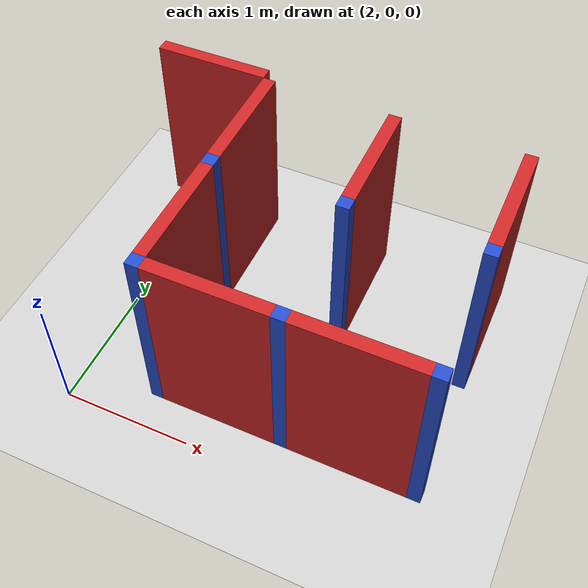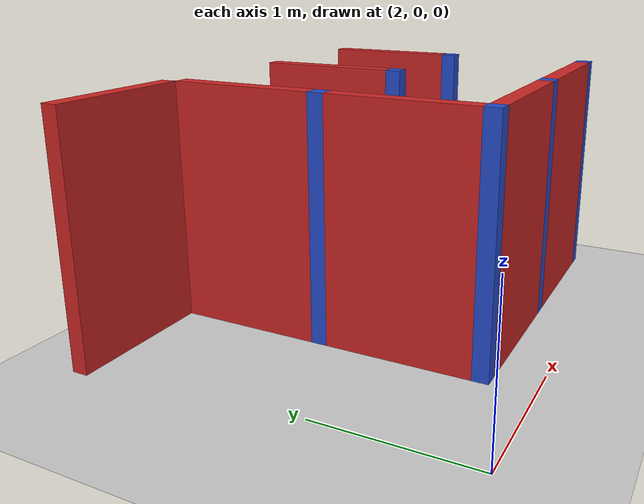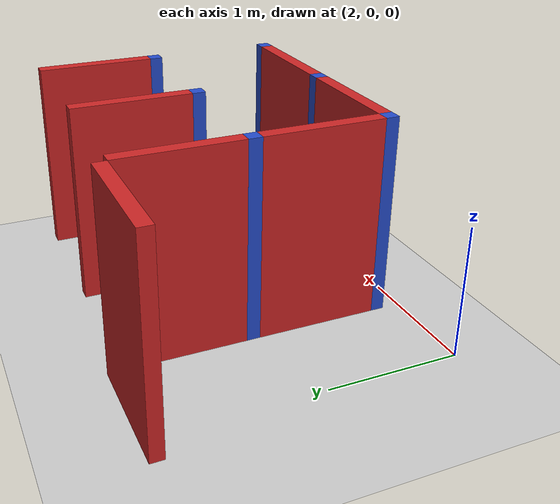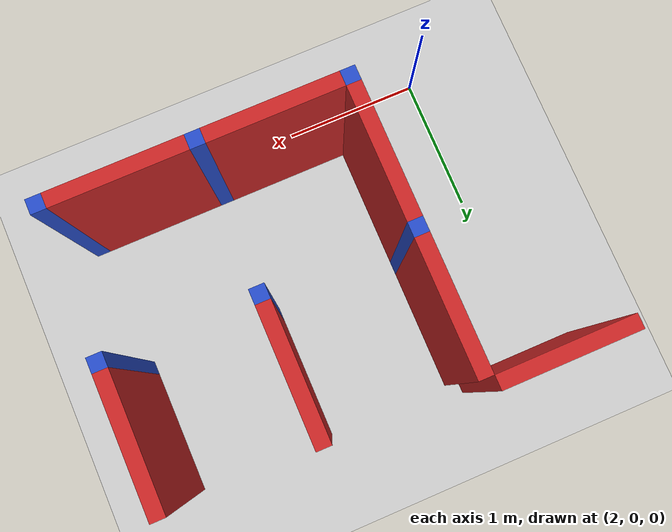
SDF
<sdf version="1.7">
 <world name="default">
  <model name="ground_plane">
   <static>1</static>
   <link name="link">
    <collision name="collision">
     <geometry><plane><normal>0 0 1</normal><size>100 100</size></plane></geometry>
     <surface><friction><ode><mu>100</mu><mu2>50</mu2></ode></friction></surface>
    </collision>
    <visual name="visual">
     <cast_shadows>0</cast_shadows>
     <geometry><plane><normal>0 0 1</normal><size>100 100</size></plane></geometry>
     <material>
      <script><uri>file://media/materials/scripts/gazebo.material</uri><name>Gazebo/Grey</name></script>
     </material>
    </visual>
   </link>
  </model>
  <model name="maze_demo">
   <link name="Joint_10_-14">
    <pose>10 -14 0 0 -0 0</pose>
    <visual name="Wall_2_Visual">
     <pose>0 0 0.75 0 -0 0</pose>
     <geometry><box><size>0.1 0.1 1.5</size></box></geometry>
     <material>
      <script><uri>file://media/materials/scripts/gazebo.material</uri><name>Gazebo/Blue</name></script>
      <ambient>0.996078 0.47451 0.0196078 1</ambient>
      <shader type="pixel"/>
     </material>
     <meta><layer>0</layer></meta>
    </visual>
    <collision name="Wall_2_Collision">
     <pose>0 0 0.75 0 -0 0</pose>
     <geometry><box><size>0.1 0.1 1.5</size></box></geometry>
     <surface>
      <friction>
       <ode><mu>1</mu><mu2>1</mu2><fdir1>0 0 0</fdir1><slip1>0</slip1><slip2>0</slip2></ode>
       <torsional>
        <coefficient>1</coefficient>
        <patch_radius>0</patch_radius>
        <surface_radius>0</surface_radius>
        <use_patch_radius>1</use_patch_radius>
        <ode><slip>0</slip></ode>
       </torsional>
      </friction>
      <bounce><restitution_coefficient>0</restitution_coefficient><threshold>1e+06</threshold></bounce>
      <contact>
       <collide_without_contact>0</collide_without_contact>
       <collide_without_contact_bitmask>1</collide_without_contact_bitmask>
       <collide_bitmask>1</collide_bitmask>
       <ode>
        <soft_cfm>0</soft_cfm>
        <soft_erp>0.2</soft_erp>
        <kp>1e+13</kp>
        <kd>1</kd>
        <max_vel>0.01</max_vel>
        <min_depth>0</min_depth>
       </ode>
       <bullet>
        <split_impulse>1</split_impulse>
        <split_impulse_penetration_threshold>-0.01</split_impulse_penetration_threshold>
        <soft_cfm>0</soft_cfm>
        <soft_erp>0.2</soft_erp>
        <kp>1e+13</kp>
        <kd>1</kd>
       </bullet>
      </contact>
     </surface>
    </collision>
   </link>
   <link name="Joint_10_-15">
    <pose>10 -15 0 0 -0 0</pose>
    <visual name="Wall_2_Visual">
     <pose>0 0 0.75 0 -0 0</pose>
     <geometry><box><size>0.1 0.1 1.5</size></box></geometry>
     <material>
      <script><uri>file://media/materials/scripts/gazebo.material</uri><name>Gazebo/Blue</name></script>
      <ambient>0.996078 0.47451 0.0196078 1</ambient>
      <shader type="pixel"/>
     </material>
     <meta><layer>0</layer></meta>
    </visual>
    <collision name="Wall_2_Collision">
     <pose>0 0 0.75 0 -0 0</pose>
     <geometry><box><size>0.1 0.1 1.5</size></box></geometry>
     <surface>
      <friction>
       <ode><mu>1</mu><mu2>1</mu2><fdir1>0 0 0</fdir1><slip1>0</slip1><slip2>0</slip2></ode>
       <torsional>
        <coefficient>1</coefficient>
        <patch_radius>0</patch_radius>
        <surface_radius>0</surface_radius>
        <use_patch_radius>1</use_patch_radius>
        <ode><slip>0</slip></ode>
       </torsional>
      </friction>
      <bounce><restitution_coefficient>0</restitution_coefficient><threshold>1e+06</threshold></bounce>
      <contact>
       <collide_without_contact>0</collide_without_contact>
       <collide_without_contact_bitmask>1</collide_without_contact_bitmask>
       <collide_bitmask>1</collide_bitmask>
       <ode>
        <soft_cfm>0</soft_cfm>
        <soft_erp>0.2</soft_erp>
        <kp>1e+13</kp>
        <kd>1</kd>
        <max_vel>0.01</max_vel>
        <min_depth>0</min_depth>
       </ode>
       <bullet>
        <split_impulse>1</split_impulse>
        <split_impulse_penetration_threshold>-0.01</split_impulse_penetration_threshold>
        <soft_cfm>0</soft_cfm>
        <soft_erp>0.2</soft_erp>
        <kp>1e+13</kp>
        <kd>1</kd>
       </bullet>
      </contact>
     </surface>
    </collision>
   </link>
   <link name="Joint_8_-14">
    <pose>8 -14 0 0 -0 0</pose>
    <visual name="Wall_2_Visual">
     <pose>0 0 0.75 0 -0 0</pose>
     <geometry><box><size>0.1 0.1 1.5</size></box></geometry>
     <material>
      <script><uri>file://media/materials/scripts/gazebo.material</uri><name>Gazebo/Blue</name></script>
      <ambient>0.996078 0.47451 0.0196078 1</ambient>
      <shader type="pixel"/>
     </material>
     <meta><layer>0</layer></meta>
    </visual>
    <collision name="Wall_2_Collision">
     <pose>0 0 0.75 0 -0 0</pose>
     <geometry><box><size>0.1 0.1 1.5</size></box></geometry>
     <surface>
      <friction>
       <ode><mu>1</mu><mu2>1</mu2><fdir1>0 0 0</fdir1><slip1>0</slip1><slip2>0</slip2></ode>
       <torsional>
        <coefficient>1</coefficient>
        <patch_radius>0</patch_radius>
        <surface_radius>0</surface_radius>
        <use_patch_radius>1</use_patch_radius>
        <ode><slip>0</slip></ode>
       </torsional>
      </friction>
      <bounce><restitution_coefficient>0</restitution_coefficient><threshold>1e+06</threshold></bounce>
      <contact>
       <collide_without_contact>0</collide_without_contact>
       <collide_without_contact_bitmask>1</collide_without_contact_bitmask>
       <collide_bitmask>1</collide_bitmask>
       <ode>
        <soft_cfm>0</soft_cfm>
        <soft_erp>0.2</soft_erp>
        <kp>1e+13</kp>
        <kd>1</kd>
        <max_vel>0.01</max_vel>
        <min_depth>0</min_depth>
       </ode>
       <bullet>
        <split_impulse>1</split_impulse>
        <split_impulse_penetration_threshold>-0.01</split_impulse_penetration_threshold>
        <soft_cfm>0</soft_cfm>
        <soft_erp>0.2</soft_erp>
        <kp>1e+13</kp>
        <kd>1</kd>
       </bullet>
      </contact>
     </surface>
    </collision>
   </link>
   <link name="Joint_8_-15">
    <pose>8 -15 0 0 -0 0</pose>
    <visual name="Wall_2_Visual">
     <pose>0 0 0.75 0 -0 0</pose>
     <geometry><box><size>0.1 0.1 1.5</size></box></geometry>
     <material>
      <script><uri>file://media/materials/scripts/gazebo.material</uri><name>Gazebo/Blue</name></script>
      <ambient>0.996078 0.47451 0.0196078 1</ambient>
      <shader type="pixel"/>
     </material>
     <meta><layer>0</layer></meta>
    </visual>
    <collision name="Wall_2_Collision">
     <pose>0 0 0.75 0 -0 0</pose>
     <geometry><box><size>0.1 0.1 1.5</size></box></geometry>
     <surface>
      <friction>
       <ode><mu>1</mu><mu2>1</mu2><fdir1>0 0 0</fdir1><slip1>0</slip1><slip2>0</slip2></ode>
       <torsional>
        <coefficient>1</coefficient>
        <patch_radius>0</patch_radius>
        <surface_radius>0</surface_radius>
        <use_patch_radius>1</use_patch_radius>
        <ode><slip>0</slip></ode>
       </torsional>
      </friction>
      <bounce><restitution_coefficient>0</restitution_coefficient><threshold>1e+06</threshold></bounce>
      <contact>
       <collide_without_contact>0</collide_without_contact>
       <collide_without_contact_bitmask>1</collide_without_contact_bitmask>
       <collide_bitmask>1</collide_bitmask>
       <ode>
        <soft_cfm>0</soft_cfm>
        <soft_erp>0.2</soft_erp>
        <kp>1e+13</kp>
        <kd>1</kd>
        <max_vel>0.01</max_vel>
        <min_depth>0</min_depth>
       </ode>
       <bullet>
        <split_impulse>1</split_impulse>
        <split_impulse_penetration_threshold>-0.01</split_impulse_penetration_threshold>
        <soft_cfm>0</soft_cfm>
        <soft_erp>0.2</soft_erp>
        <kp>1e+13</kp>
        <kd>1</kd>
       </bullet>
      </contact>
     </surface>
    </collision>
   </link>
   <link name="Joint_9_-14">
    <pose>9 -14 0 0 -0 0</pose>
    <visual name="Wall_2_Visual">
     <pose>0 0 0.75 0 -0 0</pose>
     <geometry><box><size>0.1 0.1 1.5</size></box></geometry>
     <material>
      <script><uri>file://media/materials/scripts/gazebo.material</uri><name>Gazebo/Blue</name></script>
      <ambient>0.996078 0.47451 0.0196078 1</ambient>
      <shader type="pixel"/>
     </material>
     <meta><layer>0</layer></meta>
    </visual>
    <collision name="Wall_2_Collision">
     <pose>0 0 0.75 0 -0 0</pose>
     <geometry><box><size>0.1 0.1 1.5</size></box></geometry>
     <surface>
      <friction>
       <ode><mu>1</mu><mu2>1</mu2><fdir1>0 0 0</fdir1><slip1>0</slip1><slip2>0</slip2></ode>
       <torsional>
        <coefficient>1</coefficient>
        <patch_radius>0</patch_radius>
        <surface_radius>0</surface_radius>
        <use_patch_radius>1</use_patch_radius>
        <ode><slip>0</slip></ode>
       </torsional>
      </friction>
      <bounce><restitution_coefficient>0</restitution_coefficient><threshold>1e+06</threshold></bounce>
      <contact>
       <collide_without_contact>0</collide_without_contact>
       <collide_without_contact_bitmask>1</collide_without_contact_bitmask>
       <collide_bitmask>1</collide_bitmask>
       <ode>
        <soft_cfm>0</soft_cfm>
        <soft_erp>0.2</soft_erp>
        <kp>1e+13</kp>
        <kd>1</kd>
        <max_vel>0.01</max_vel>
        <min_depth>0</min_depth>
       </ode>
       <bullet>
        <split_impulse>1</split_impulse>
        <split_impulse_penetration_threshold>-0.01</split_impulse_penetration_threshold>
        <soft_cfm>0</soft_cfm>
        <soft_erp>0.2</soft_erp>
        <kp>1e+13</kp>
        <kd>1</kd>
       </bullet>
      </contact>
     </surface>
    </collision>
   </link>
   <link name="Joint_9_-15">
    <pose>9 -15 0 0 -0 0</pose>
    <visual name="Wall_2_Visual">
     <pose>0 0 0.75 0 -0 0</pose>
     <geometry><box><size>0.1 0.1 1.5</size></box></geometry>
     <material>
      <script><uri>file://media/materials/scripts/gazebo.material</uri><name>Gazebo/Blue</name></script>
      <ambient>0.996078 0.47451 0.0196078 1</ambient>
      <shader type="pixel"/>
     </material>
     <meta><layer>0</layer></meta>
    </visual>
    <collision name="Wall_2_Collision">
     <pose>0 0 0.75 0 -0 0</pose>
     <geometry><box><size>0.1 0.1 1.5</size></box></geometry>
     <surface>
      <friction>
       <ode><mu>1</mu><mu2>1</mu2><fdir1>0 0 0</fdir1><slip1>0</slip1><slip2>0</slip2></ode>
       <torsional>
        <coefficient>1</coefficient>
        <patch_radius>0</patch_radius>
        <surface_radius>0</surface_radius>
        <use_patch_radius>1</use_patch_radius>
        <ode><slip>0</slip></ode>
       </torsional>
      </friction>
      <bounce><restitution_coefficient>0</restitution_coefficient><threshold>1e+06</threshold></bounce>
      <contact>
       <collide_without_contact>0</collide_without_contact>
       <collide_without_contact_bitmask>1</collide_without_contact_bitmask>
       <collide_bitmask>1</collide_bitmask>
       <ode>
        <soft_cfm>0</soft_cfm>
        <soft_erp>0.2</soft_erp>
        <kp>1e+13</kp>
        <kd>1</kd>
        <max_vel>0.01</max_vel>
        <min_depth>0</min_depth>
       </ode>
       <bullet>
        <split_impulse>1</split_impulse>
        <split_impulse_penetration_threshold>-0.01</split_impulse_penetration_threshold>
        <soft_cfm>0</soft_cfm>
        <soft_erp>0.2</soft_erp>
        <kp>1e+13</kp>
        <kd>1</kd>
       </bullet>
      </contact>
     </surface>
    </collision>
   </link>
   <link name="Wall_10_13_v">
    <pose>10 -13.5 0 0 -0 1.5708</pose>
    <visual name="Wall_0_Visual">
     <pose>0 0 0.75 0 -0 0</pose>
     <geometry><box><size>0.9 0.1 1.5</size></box></geometry>
     <material>
      <script><uri>file://media/materials/scripts/gazebo.material</uri><name>Gazebo/Red</name></script>
      <ambient>0.921569 0.807843 0.615686 1</ambient>
      <shader type="pixel"/>
     </material>
     <meta><layer>0</layer></meta>
    </visual>
    <collision name="Wall_0_Collision">
     <pose>0 0 0.75 0 -0 0</pose>
     <geometry><box><size>0.9 0.1 1.5</size></box></geometry>
     <surface>
      <friction>
       <ode><mu>1</mu><mu2>1</mu2><fdir1>0 0 0</fdir1><slip1>0</slip1><slip2>0</slip2></ode>
       <torsional>
        <coefficient>1</coefficient>
        <patch_radius>0</patch_radius>
        <surface_radius>0</surface_radius>
        <use_patch_radius>1</use_patch_radius>
        <ode><slip>0</slip></ode>
       </torsional>
      </friction>
      <bounce><restitution_coefficient>0</restitution_coefficient><threshold>1e+06</threshold></bounce>
      <contact>
       <collide_without_contact>0</collide_without_contact>
       <collide_without_contact_bitmask>1</collide_without_contact_bitmask>
       <collide_bitmask>1</collide_bitmask>
       <ode>
        <soft_cfm>0</soft_cfm>
        <soft_erp>0.2</soft_erp>
        <kp>1e+13</kp>
        <kd>1</kd>
        <max_vel>0.01</max_vel>
        <min_depth>0</min_depth>
       </ode>
       <bullet>
        <split_impulse>1</split_impulse>
        <split_impulse_penetration_threshold>-0.01</split_impulse_penetration_threshold>
        <soft_cfm>0</soft_cfm>
        <soft_erp>0.2</soft_erp>
        <kp>1e+13</kp>
        <kd>1</kd>
       </bullet>
      </contact>
     </surface>
    </collision>
   </link>
   <link name="Wall_7_13_h">
    <pose>7.5 -13 0 0 -0 0</pose>
    <visual name="Wall_0_Visual">
     <pose>0 0 0.75 0 -0 0</pose>
     <geometry><box><size>0.9 0.1 1.5</size></box></geometry>
     <material>
      <script><uri>file://media/materials/scripts/gazebo.material</uri><name>Gazebo/Red</name></script>
      <ambient>0.921569 0.807843 0.615686 1</ambient>
      <shader type="pixel"/>
     </material>
     <meta><layer>0</layer></meta>
    </visual>
    <collision name="Wall_0_Collision">
     <pose>0 0 0.75 0 -0 0</pose>
     <geometry><box><size>0.9 0.1 1.5</size></box></geometry>
     <surface>
      <friction>
       <ode><mu>1</mu><mu2>1</mu2><fdir1>0 0 0</fdir1><slip1>0</slip1><slip2>0</slip2></ode>
       <torsional>
        <coefficient>1</coefficient>
        <patch_radius>0</patch_radius>
        <surface_radius>0</surface_radius>
        <use_patch_radius>1</use_patch_radius>
        <ode><slip>0</slip></ode>
       </torsional>
      </friction>
      <bounce><restitution_coefficient>0</restitution_coefficient><threshold>1e+06</threshold></bounce>
      <contact>
       <collide_without_contact>0</collide_without_contact>
       <collide_without_contact_bitmask>1</collide_without_contact_bitmask>
       <collide_bitmask>1</collide_bitmask>
       <ode>
        <soft_cfm>0</soft_cfm>
        <soft_erp>0.2</soft_erp>
        <kp>1e+13</kp>
        <kd>1</kd>
        <max_vel>0.01</max_vel>
        <min_depth>0</min_depth>
       </ode>
       <bullet>
        <split_impulse>1</split_impulse>
        <split_impulse_penetration_threshold>-0.01</split_impulse_penetration_threshold>
        <soft_cfm>0</soft_cfm>
        <soft_erp>0.2</soft_erp>
        <kp>1e+13</kp>
        <kd>1</kd>
       </bullet>
      </contact>
     </surface>
    </collision>
   </link>
   <link name="Wall_8_13_v">
    <pose>8 -13.5 0 0 -0 1.5708</pose>
    <visual name="Wall_0_Visual">
     <pose>0 0 0.75 0 -0 0</pose>
     <geometry><box><size>0.9 0.1 1.5</size></box></geometry>
     <material>
      <script><uri>file://media/materials/scripts/gazebo.material</uri><name>Gazebo/Red</name></script>
      <ambient>0.921569 0.807843 0.615686 1</ambient>
      <shader type="pixel"/>
     </material>
     <meta><layer>0</layer></meta>
    </visual>
    <collision name="Wall_0_Collision">
     <pose>0 0 0.75 0 -0 0</pose>
     <geometry><box><size>0.9 0.1 1.5</size></box></geometry>
     <surface>
      <friction>
       <ode><mu>1</mu><mu2>1</mu2><fdir1>0 0 0</fdir1><slip1>0</slip1><slip2>0</slip2></ode>
       <torsional>
        <coefficient>1</coefficient>
        <patch_radius>0</patch_radius>
        <surface_radius>0</surface_radius>
        <use_patch_radius>1</use_patch_radius>
        <ode><slip>0</slip></ode>
       </torsional>
      </friction>
      <bounce><restitution_coefficient>0</restitution_coefficient><threshold>1e+06</threshold></bounce>
      <contact>
       <collide_without_contact>0</collide_without_contact>
       <collide_without_contact_bitmask>1</collide_without_contact_bitmask>
       <collide_bitmask>1</collide_bitmask>
       <ode>
        <soft_cfm>0</soft_cfm>
        <soft_erp>0.2</soft_erp>
        <kp>1e+13</kp>
        <kd>1</kd>
        <max_vel>0.01</max_vel>
        <min_depth>0</min_depth>
       </ode>
       <bullet>
        <split_impulse>1</split_impulse>
        <split_impulse_penetration_threshold>-0.01</split_impulse_penetration_threshold>
        <soft_cfm>0</soft_cfm>
        <soft_erp>0.2</soft_erp>
        <kp>1e+13</kp>
        <kd>1</kd>
       </bullet>
      </contact>
     </surface>
    </collision>
   </link>
   <link name="Wall_8_14_v">
    <pose>8 -14.5 0 0 -0 1.5708</pose>
    <visual name="Wall_0_Visual">
     <pose>0 0 0.75 0 -0 0</pose>
     <geometry><box><size>0.9 0.1 1.5</size></box></geometry>
     <material>
      <script><uri>file://media/materials/scripts/gazebo.material</uri><name>Gazebo/Red</name></script>
      <ambient>0.921569 0.807843 0.615686 1</ambient>
      <shader type="pixel"/>
     </material>
     <meta><layer>0</layer></meta>
    </visual>
    <collision name="Wall_0_Collision">
     <pose>0 0 0.75 0 -0 0</pose>
     <geometry><box><size>0.9 0.1 1.5</size></box></geometry>
     <surface>
      <friction>
       <ode><mu>1</mu><mu2>1</mu2><fdir1>0 0 0</fdir1><slip1>0</slip1><slip2>0</slip2></ode>
       <torsional>
        <coefficient>1</coefficient>
        <patch_radius>0</patch_radius>
        <surface_radius>0</surface_radius>
        <use_patch_radius>1</use_patch_radius>
        <ode><slip>0</slip></ode>
       </torsional>
      </friction>
      <bounce><restitution_coefficient>0</restitution_coefficient><threshold>1e+06</threshold></bounce>
      <contact>
       <collide_without_contact>0</collide_without_contact>
       <collide_without_contact_bitmask>1</collide_without_contact_bitmask>
       <collide_bitmask>1</collide_bitmask>
       <ode>
        <soft_cfm>0</soft_cfm>
        <soft_erp>0.2</soft_erp>
        <kp>1e+13</kp>
        <kd>1</kd>
        <max_vel>0.01</max_vel>
        <min_depth>0</min_depth>
       </ode>
       <bullet>
        <split_impulse>1</split_impulse>
        <split_impulse_penetration_threshold>-0.01</split_impulse_penetration_threshold>
        <soft_cfm>0</soft_cfm>
        <soft_erp>0.2</soft_erp>
        <kp>1e+13</kp>
        <kd>1</kd>
       </bullet>
      </contact>
     </surface>
    </collision>
   </link>
   <link name="Wall_8_15_h">
    <pose>8.5 -15 0 0 -0 0</pose>
    <visual name="Wall_0_Visual">
     <pose>0 0 0.75 0 -0 0</pose>
     <geometry><box><size>0.9 0.1 1.5</size></box></geometry>
     <material>
      <script><uri>file://media/materials/scripts/gazebo.material</uri><name>Gazebo/Red</name></script>
      <ambient>0.921569 0.807843 0.615686 1</ambient>
      <shader type="pixel"/>
     </material>
     <meta><layer>0</layer></meta>
    </visual>
    <collision name="Wall_0_Collision">
     <pose>0 0 0.75 0 -0 0</pose>
     <geometry><box><size>0.9 0.1 1.5</size></box></geometry>
     <surface>
      <friction>
       <ode><mu>1</mu><mu2>1</mu2><fdir1>0 0 0</fdir1><slip1>0</slip1><slip2>0</slip2></ode>
       <torsional>
        <coefficient>1</coefficient>
        <patch_radius>0</patch_radius>
        <surface_radius>0</surface_radius>
        <use_patch_radius>1</use_patch_radius>
        <ode><slip>0</slip></ode>
       </torsional>
      </friction>
      <bounce><restitution_coefficient>0</restitution_coefficient><threshold>1e+06</threshold></bounce>
      <contact>
       <collide_without_contact>0</collide_without_contact>
       <collide_without_contact_bitmask>1</collide_without_contact_bitmask>
       <collide_bitmask>1</collide_bitmask>
       <ode>
        <soft_cfm>0</soft_cfm>
        <soft_erp>0.2</soft_erp>
        <kp>1e+13</kp>
        <kd>1</kd>
        <max_vel>0.01</max_vel>
        <min_depth>0</min_depth>
       </ode>
       <bullet>
        <split_impulse>1</split_impulse>
        <split_impulse_penetration_threshold>-0.01</split_impulse_penetration_threshold>
        <soft_cfm>0</soft_cfm>
        <soft_erp>0.2</soft_erp>
        <kp>1e+13</kp>
        <kd>1</kd>
       </bullet>
      </contact>
     </surface>
    </collision>
   </link>
   <link name="Wall_9_13_v">
    <pose>9 -13.5 0 0 -0 1.5708</pose>
    <visual name="Wall_0_Visual">
     <pose>0 0 0.75 0 -0 0</pose>
     <geometry><box><size>0.9 0.1 1.5</size></box></geometry>
     <material>
      <script><uri>file://media/materials/scripts/gazebo.material</uri><name>Gazebo/Red</name></script>
      <ambient>0.921569 0.807843 0.615686 1</ambient>
      <shader type="pixel"/>
     </material>
     <meta><layer>0</layer></meta>
    </visual>
    <collision name="Wall_0_Collision">
     <pose>0 0 0.75 0 -0 0</pose>
     <geometry><box><size>0.9 0.1 1.5</size></box></geometry>
     <surface>
      <friction>
       <ode><mu>1</mu><mu2>1</mu2><fdir1>0 0 0</fdir1><slip1>0</slip1><slip2>0</slip2></ode>
       <torsional>
        <coefficient>1</coefficient>
        <patch_radius>0</patch_radius>
        <surface_radius>0</surface_radius>
        <use_patch_radius>1</use_patch_radius>
        <ode><slip>0</slip></ode>
       </torsional>
      </friction>
      <bounce><restitution_coefficient>0</restitution_coefficient><threshold>1e+06</threshold></bounce>
      <contact>
       <collide_without_contact>0</collide_without_contact>
       <collide_without_contact_bitmask>1</collide_without_contact_bitmask>
       <collide_bitmask>1</collide_bitmask>
       <ode>
        <soft_cfm>0</soft_cfm>
        <soft_erp>0.2</soft_erp>
        <kp>1e+13</kp>
        <kd>1</kd>
        <max_vel>0.01</max_vel>
        <min_depth>0</min_depth>
       </ode>
       <bullet>
        <split_impulse>1</split_impulse>
        <split_impulse_penetration_threshold>-0.01</split_impulse_penetration_threshold>
        <soft_cfm>0</soft_cfm>
        <soft_erp>0.2</soft_erp>
        <kp>1e+13</kp>
        <kd>1</kd>
       </bullet>
      </contact>
     </surface>
    </collision>
   </link>
   <link name="Wall_9_15_h">
    <pose>9.5 -15 0 0 -0 0</pose>
    <visual name="Wall_0_Visual">
     <pose>0 0 0.75 0 -0 0</pose>
     <geometry><box><size>0.9 0.1 1.5</size></box></geometry>
     <material>
      <script><uri>file://media/materials/scripts/gazebo.material</uri><name>Gazebo/Red</name></script>
      <ambient>0.921569 0.807843 0.615686 1</ambient>
      <shader type="pixel"/>
     </material>
     <meta><layer>0</layer></meta>
    </visual>
    <collision name="Wall_0_Collision">
     <pose>0 0 0.75 0 -0 0</pose>
     <geometry><box><size>0.9 0.1 1.5</size></box></geometry>
     <surface>
      <friction>
       <ode><mu>1</mu><mu2>1</mu2><fdir1>0 0 0</fdir1><slip1>0</slip1><slip2>0</slip2></ode>
       <torsional>
        <coefficient>1</coefficient>
        <patch_radius>0</patch_radius>
        <surface_radius>0</surface_radius>
        <use_patch_radius>1</use_patch_radius>
        <ode><slip>0</slip></ode>
       </torsional>
      </friction>
      <bounce><restitution_coefficient>0</restitution_coefficient><threshold>1e+06</threshold></bounce>
      <contact>
       <collide_without_contact>0</collide_without_contact>
       <collide_without_contact_bitmask>1</collide_without_contact_bitmask>
       <collide_bitmask>1</collide_bitmask>
       <ode>
        <soft_cfm>0</soft_cfm>
        <soft_erp>0.2</soft_erp>
        <kp>1e+13</kp>
        <kd>1</kd>
        <max_vel>0.01</max_vel>
        <min_depth>0</min_depth>
       </ode>
       <bullet>
        <split_impulse>1</split_impulse>
        <split_impulse_penetration_threshold>-0.01</split_impulse_penetration_threshold>
        <soft_cfm>0</soft_cfm>
        <soft_erp>0.2</soft_erp>
        <kp>1e+13</kp>
        <kd>1</kd>
       </bullet>
      </contact>
     </surface>
    </collision>
   </link>
   <static>1</static>
   <pose>-5.34608 15.268 0.093198 0 -0 0</pose>
  </model>
 </world>
</sdf>
